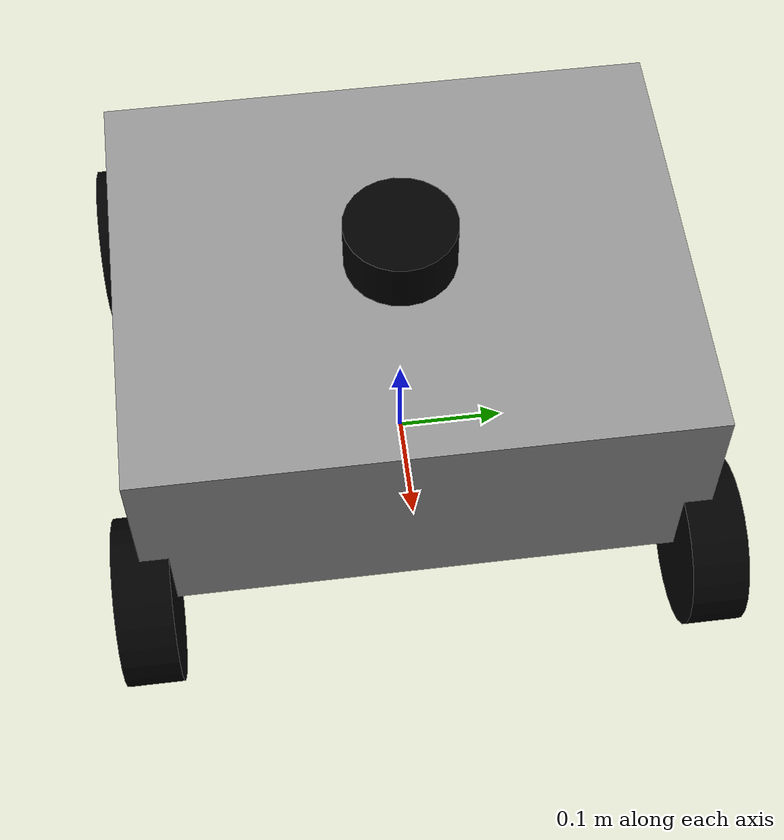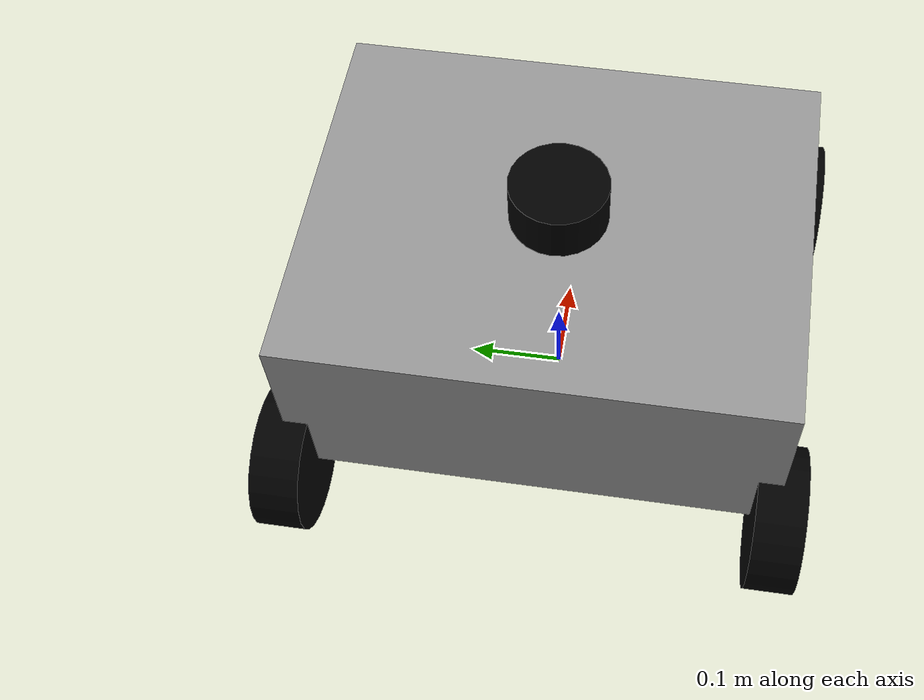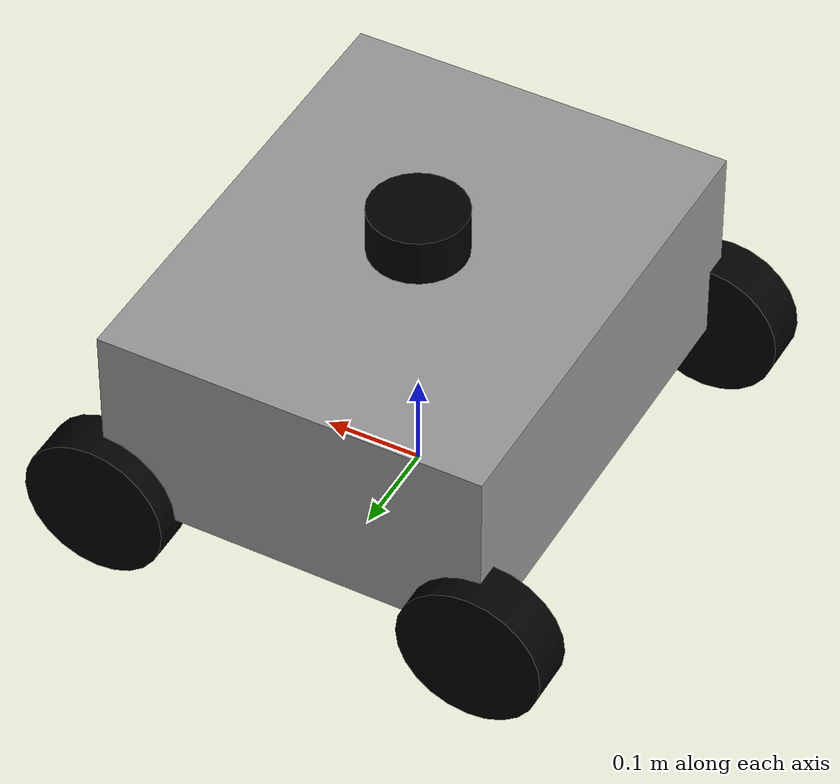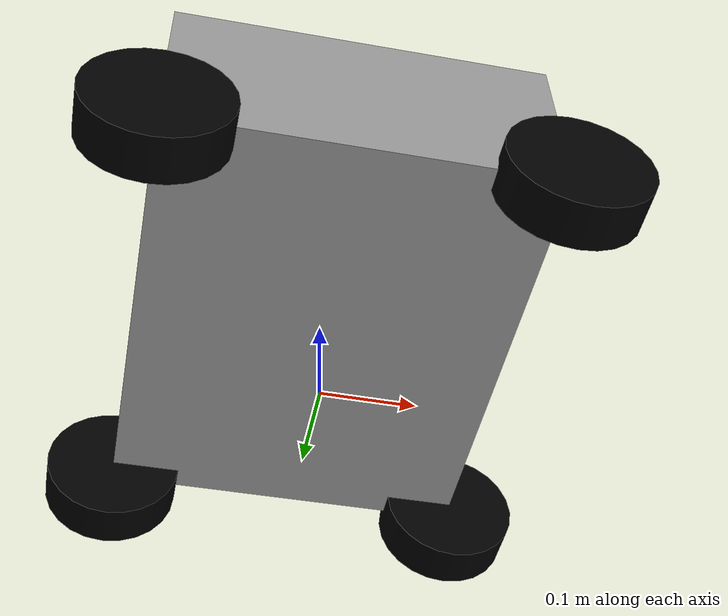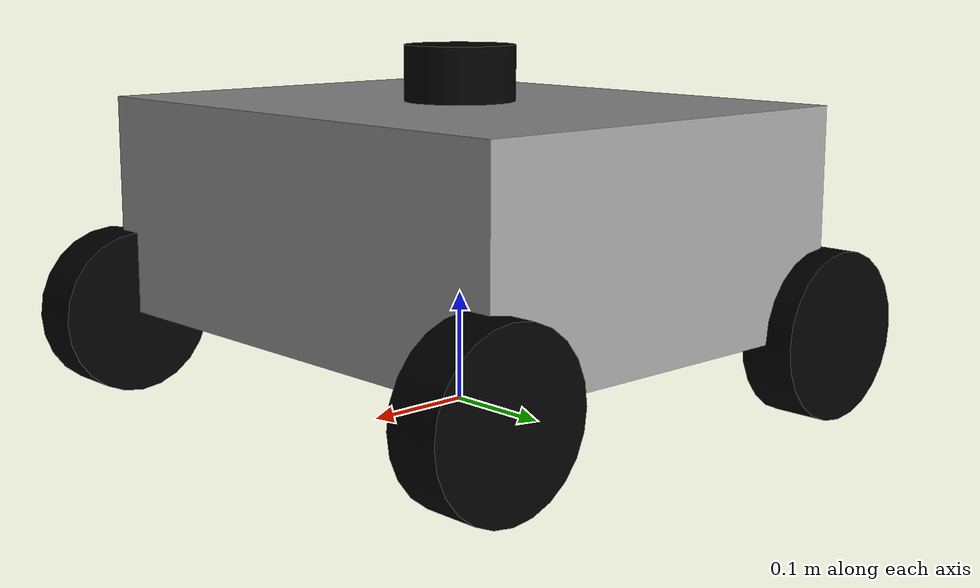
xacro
<?xml version="1.0"?>
<robot name="rover_x40a" xmlns:xacro="http://ros.org/wiki/xacro">

  <!-- Robot Parameters -->
  <xacro:property name="base_width" value="0.5"/>
  <xacro:property name="base_length" value="0.4"/>
  <xacro:property name="base_height" value="0.2"/>
  <xacro:property name="wheel_radius" value="0.075"/>
  <xacro:property name="lidar_height" value="0.2"/>

  <!-- Base Footprint (on ground, compatible with official Vstone package) -->
  <link name="base_footprint"/>

  <joint name="base_footprint_joint" type="fixed">
    <parent link="base_footprint"/>
    <child link="base_link"/>
    <origin xyz="0 0 0.075" rpy="0 0 0"/>  <!-- Lift base_link by wheel radius -->
  </joint>

  <!-- Base Link -->
  <link name="base_link">
    <inertial>
      <mass value="40.0"/>
      <origin xyz="0 0 0.1"/>
      <inertia ixx="1.0" ixy="0.0" ixz="0.0" iyy="1.0" iyz="0.0" izz="1.0"/>
    </inertial>
    <visual>
      <origin xyz="0 0 0.1"/>
      <geometry>
        <box size="${base_length} ${base_width} ${base_height}"/>
      </geometry>
      <material name="grey">
        <color rgba="0.6 0.6 0.6 1.0"/>
      </material>
    </visual>
    <collision>
      <origin xyz="0 0 0.1"/>
      <geometry>
        <box size="${base_length} ${base_width} ${base_height}"/>
      </geometry>
    </collision>
  </link>

  <!-- Livox MID-360 LiDAR -->
  <link name="livox_frame">
    <visual>
      <geometry>
        <cylinder length="0.1" radius="0.05"/>
      </geometry>
      <material name="black">
        <color rgba="0 0 0 1"/>
      </material>
    </visual>
    <collision>
      <geometry>
        <cylinder length="0.1" radius="0.05"/>
      </geometry>
    </collision>
  </link>

  <joint name="lidar_joint" type="fixed">
    <parent link="base_link"/>
    <child link="livox_frame"/>
    <origin xyz="0 0 ${lidar_height}" rpy="0 0 0"/>
  </joint>

  <!-- Four wheels for 4WDS -->
  <xacro:macro name="wheel" params="prefix x y">
    <link name="${prefix}_wheel">
      <visual>
        <geometry>
          <cylinder length="0.05" radius="${wheel_radius}"/>
        </geometry>
        <material name="black"/>
      </visual>
    </link>
    <joint name="${prefix}_wheel_joint" type="fixed">
      <parent link="base_link"/>
      <child link="${prefix}_wheel"/>
      <origin xyz="${x} ${y} 0" rpy="1.57 0 0"/>
    </joint>
  </xacro:macro>

  <xacro:wheel prefix="front_left" x="0.2" y="0.25"/>
  <xacro:wheel prefix="front_right" x="0.2" y="-0.25"/>
  <xacro:wheel prefix="rear_left" x="-0.2" y="0.25"/>
  <xacro:wheel prefix="rear_right" x="-0.2" y="-0.25"/>

  <!-- Import Gazebo simulation elements -->
  <xacro:include filename="$(find rover_description)/urdf/rover_x40a.gazebo.xacro"/>

</robot>
